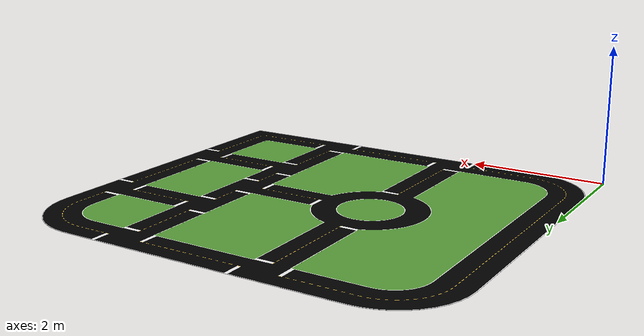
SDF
<?xml version="1.0" ?>
<sdf version="1.8">
  <world name="cyber_city_custom">
    <physics name="1ms" type="ignored">
      <max_step_size>0.001</max_step_size>
      <real_time_factor>1.0</real_time_factor>
    </physics>
    <plugin filename="gz-sim-physics-system" name="gz::sim::systems::Physics"/>
    <plugin filename="gz-sim-scene-broadcaster-system" name="gz::sim::systems::SceneBroadcaster"/>
    <plugin filename="gz-sim-sensors-system" name="gz::sim::systems::Sensors"/>
    <plugin filename="gz-sim-user-commands-system" name="gz::sim::systems::UserCommands"/>

    <scene>
      <ambient>0.8 0.8 0.8 1</ambient>
      <background>0.5 0.8 0.9 1</background>
      <shadows>false</shadows> </scene>

    <light type="directional" name="sun">
      <cast_shadows>false</cast_shadows>
      <pose>0 0 10 0 0 0</pose>
      <diffuse>1.0 1.0 1.0 1</diffuse>
      <specular>0.2 0.2 0.2 1</specular>
      <direction>-0.5 0.1 -0.9</direction>
    </light>

    <model name="cyber_city_3d">
      <static>true</static>
      <pose>3.048 2.794 0 0 0 -1.570796</pose>
      <link name="link">
        <collision name="collision">
          <geometry>
            <mesh>
              <uri>materials/meshes/cyber_city.dae</uri>
              <scale>1.016 1.016 1.016</scale>
            </mesh>
          </geometry>
        </collision>
        <visual name="visual">
          <geometry>
            <mesh>
              <uri>materials/meshes/cyber_city.dae</uri>
              <scale>1.016 1.016 1.016</scale>
            </mesh>
          </geometry>
        </visual>
      </link>
    </model>
  </world>
</sdf>
